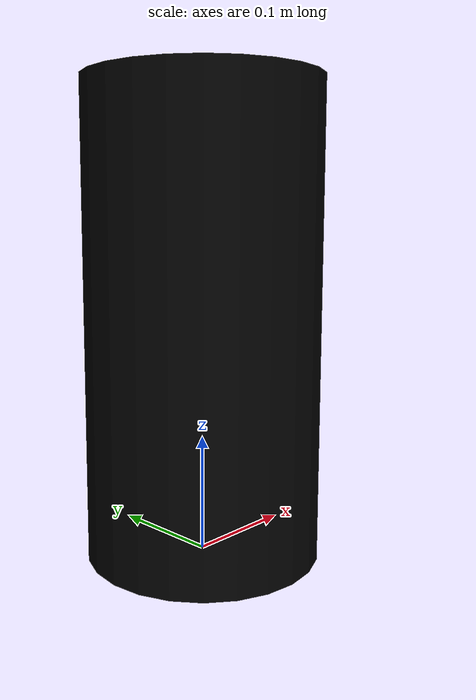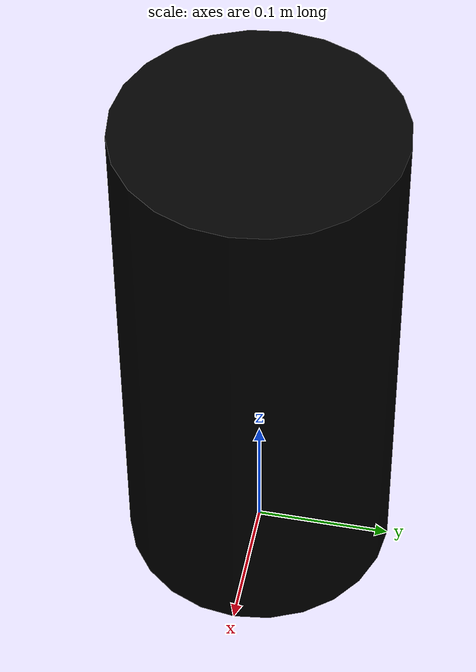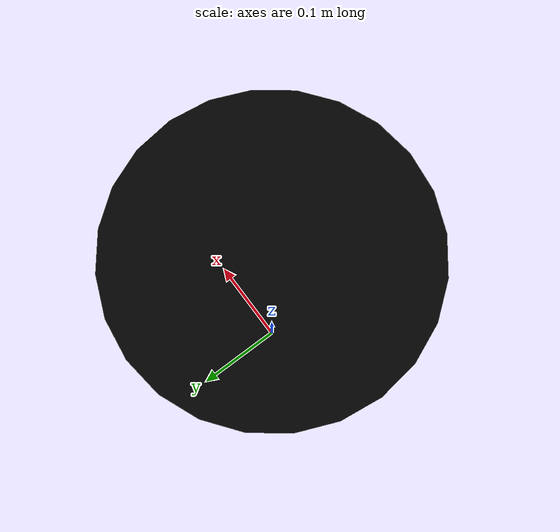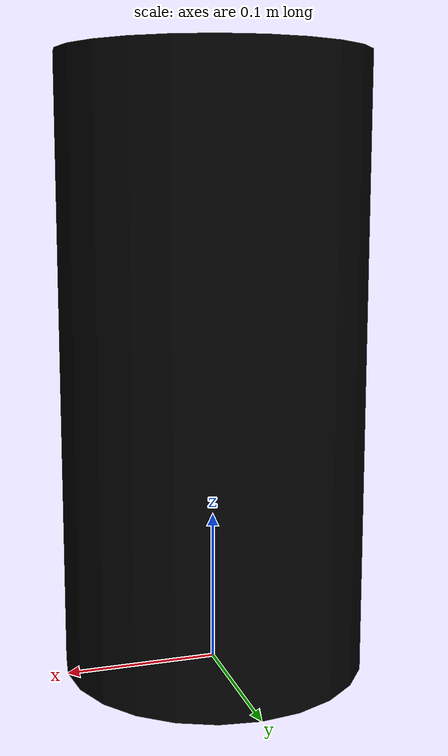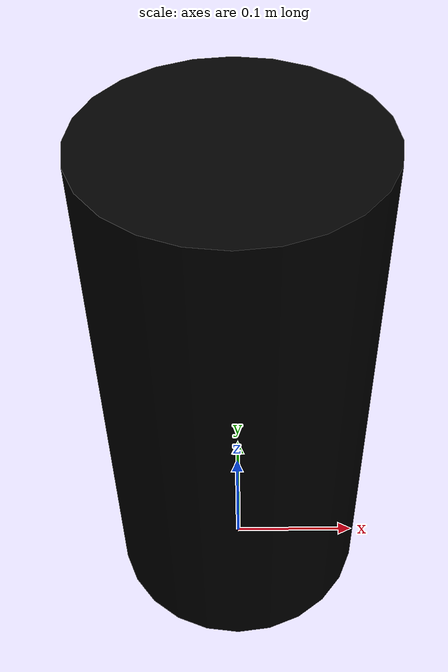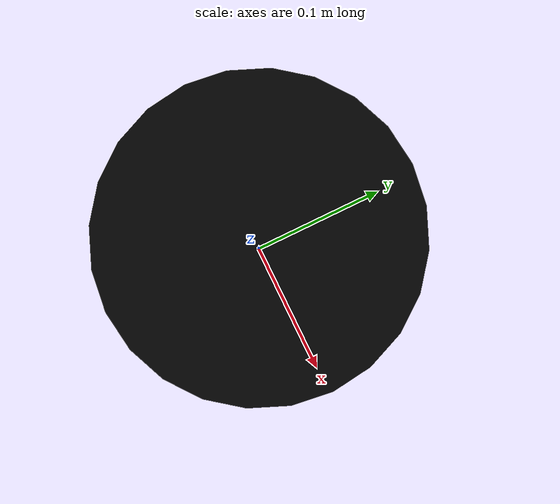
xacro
<?xml version="1.0"?>
<robot name="ModularBot" xmlns:xacro="http://ros.org/wiki/xacro">

    <xacro:property name="width" value="0.1" />
    <xacro:property name="len1" value="0.4" />
    <xacro:property name="len2" value="0.6" />
    <xacro:property name="len3" value="0.8" />

    <material name="blue">
        <color rgba="0 0 0.8 1"/>
    </material>

    <material name="black">
        <color rgba="0 0 0 1"/>
    </material>

    <material name="white">
        <color rgba="1 1 1 1"/>
    </material>

    <xacro:macro name="default_inertial" params="mass">
        <inertial>
        <mass value="${mass}" />
        <inertia ixx="1.0" ixy="0.0" ixz="0.0" iyy="1.0" iyz="0.0" izz="1.0" />
        </inertial>
    </xacro:macro>

    <link name="base_link"/>

    <link name="link_0">
        <visual>
            <origin xyz="0 0 ${len1/2}" rpy="0 0 0" />
            <geometry>
                <cylinder radius="${width}" length="${len1}"/>
            </geometry>
            <material name="black"/>
        </visual>
        <collision>
            <geometry>
                <cylinder radius="${width}" length="${len1}"/>
            </geometry>
        </collision>
        <xacro:default_inertial mass="10"/>
    </link>

    <joint name="fixed" type="fixed">
        <parent link="base_link"/>
        <child link="link_0"/>
    </joint>

    <xacro:macro name="add_link" params="suffix length x y z r p yaw">

        <link name="link_${suffix}">
        <visual>
            <origin xyz="${length/2} 0 0" rpy="0 0 0" />
            <geometry>
            <box size="${length} ${width} ${width}"/>
            </geometry>
            <xacro:if value="${suffix%2==0}">
                <material name="white"/>
            </xacro:if>
            <xacro:unless value="${suffix%2==0}">
                <material name="blue"/>
            </xacro:unless>
        </visual>
        <collision>
            <origin xyz="${length/2} 0 0" rpy="0 0 0" />
            <geometry>
            <box size="${length} ${width} ${width}"/>
            </geometry>
        </collision>
        <xacro:default_inertial mass="1"/>
        </link>

        <joint name="joint_${suffix-1}_${suffix}" type="continuous">
        <axis xyz="0 0 1" rpy="0 0 0" />

        <parent link="link_${suffix-1}"/>

        <child link="link_${suffix}"/>
        <origin xyz="${x} ${y} ${z}" rpy="${r} ${p} ${yaw}"/>
        </joint>

    </xacro:macro>

    <xacro:macro name="add_link_elbow" params="suffix p n x y z roll pitch yaw">

        <link name="link_${suffix}">
            <visual>
                <origin xyz="0 0 ${p/2}" rpy="0 0 0" />
                <geometry>
                <box size="${width} ${width} ${p}"/>
                </geometry>
                <xacro:if value="${suffix%2==0}">
                    <material name="white"/>
                </xacro:if>
                <xacro:unless value="${suffix%2==0}">
                    <material name="blue"/>
                </xacro:unless>
            </visual>
            <visual>
                <origin xyz="0 ${n/2} ${p}" rpy="0 0 0" />
                <geometry>
                <box size="${width} ${n} ${width}"/>
                </geometry>
                <xacro:if value="${suffix%2==0}">
                    <material name="white"/>
                </xacro:if>
                <xacro:unless value="${suffix%2==0}">
                    <material name="blue"/>
                </xacro:unless>
            </visual>
            <visual>
                <origin xyz="0 0 -0.05" rpy="0 0 0" />
                <geometry>
                <box size="${width} ${width} 0.1"/>
                </geometry>
                <material name="black"/>
            </visual>
            <collision>
                <origin xyz="0 0 ${p/2}" rpy="0 0 0" />
                <geometry>
                <box size="${width} ${width} ${p}"/>
                </geometry>
            </collision>
            <collision>
                <origin xyz="0 ${n/2} ${p}" rpy="0 0 0" />
                <geometry>
                <box size="${width} ${n} ${width}"/>
                </geometry>
            </collision>
            <collision>
                <origin xyz="0 0 -0.05" rpy="0 0 0" />
                <geometry>
                <box size="${width} ${width} 0.1"/>
                </geometry>
                <material name="black"/>
            </collision>
            <xacro:default_inertial mass="1"/>
        </link>

        <joint name="joint_${suffix-1}_${suffix}" type="continuous">
            <axis xyz="0 0 1" rpy="0 0 0" />

            <parent link="link_${suffix-1}"/>

            <child link="link_${suffix}"/>
            <origin xyz="${x} ${y} ${z}" rpy="${roll} ${pitch} ${yaw}"/>
        </joint>
    </xacro:macro>

</robot>
